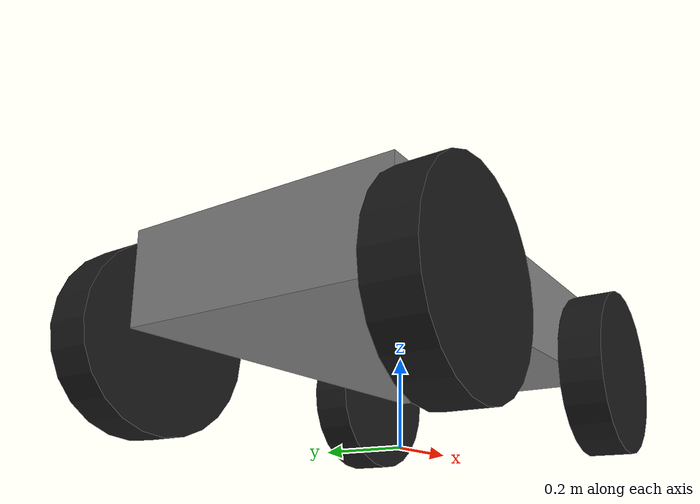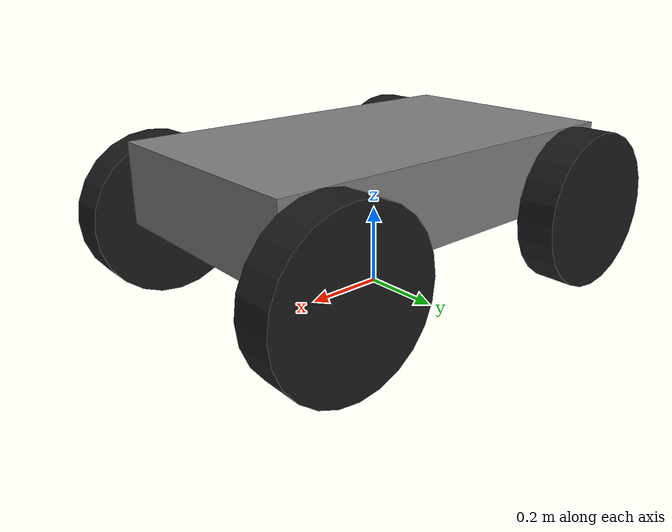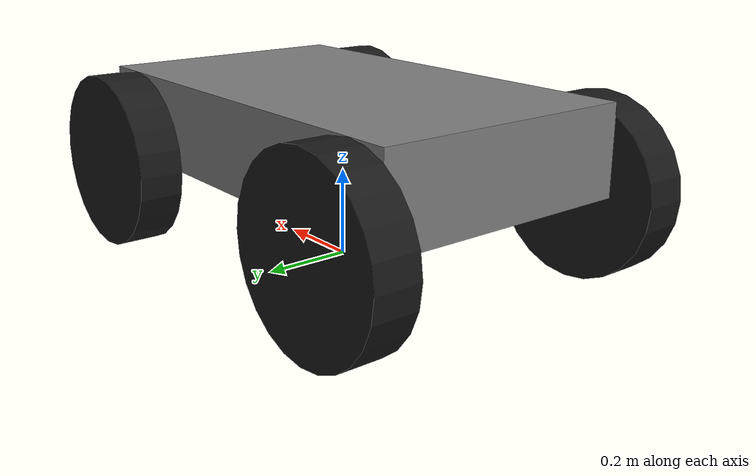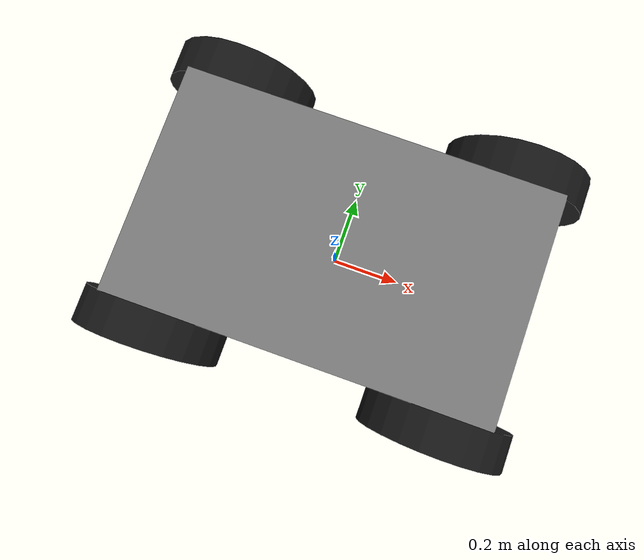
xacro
<?xml version="1.0"?>
<robot name="ugv" xmlns:xacro="http://www.ros.org/wiki/xacro">

  <!-- ================= BASE FOOTPRINT (ROOT) ================= -->
  <link name="base_footprint"/>

  <joint name="base_footprint_joint" type="fixed">
    <parent link="base_footprint"/>
    <child link="base_link"/>
    <origin xyz="0 0 0.2" rpy="0 0 0"/>
  </joint>

  <!-- ================= BASE LINK (PHYSICS ROOT) ================= -->
  <link name="base_link">
    <inertial>
      <mass value="50.0"/>
      <origin xyz="0 0 0.1"/>
      <inertia ixx="1.0" ixy="0" ixz="0" iyy="1.0" iyz="0" izz="1.0"/>
    </inertial>
    <visual>
      <origin xyz="0 0 0.1"/>
      <geometry><box size="1.0 0.6 0.2"/></geometry>
      <material name="chassis_color"><color rgba="0.5 0.5 0.5 1.0"/></material>
    </visual>
    <collision>
      <origin xyz="0 0 0.1"/>
      <geometry><box size="1.0 0.6 0.2"/></geometry>
    </collision>
  </link>

  <!-- ================= WHEEL MACRO ================= -->
  <xacro:macro name="wheel" params="name x y">
    <link name="${name}">
      <visual>
        <origin xyz="0 0 0" rpy="${pi/2} 0 0"/>
        <geometry><cylinder radius="0.2" length="0.1"/></geometry>
        <material name="wheel_color"><color rgba="0.1 0.1 0.1 1.0"/></material>
      </visual>

      <collision>
        <origin xyz="0 0 0" rpy="${pi/2} 0 0"/>
        <geometry><cylinder radius="0.2" length="0.1"/></geometry>
      </collision>

      <inertial>
        <mass value="5.0"/>
        <inertia ixx="0.1" ixy="0" ixz="0" iyy="0.1" iyz="0" izz="0.1"/>
      </inertial>
    </link>

    <joint name="${name}_joint" type="continuous">
      <parent link="base_link"/>
      <child link="${name}"/>
      <origin xyz="${x} ${y} 0"/>
      <axis xyz="0 1 0"/>
      <limit effort="1000" velocity="10.0"/>
      <dynamics damping="0.1" friction="0.1"/>
    </joint>

    <gazebo reference="${name}">
      <mu1 value="1.0"/>
      <mu2 value="1.0"/>
      <kp value="10000000.0"/>
      <kd value="1.0"/>
      <material>Gazebo/Grey</material>
    </gazebo>
  </xacro:macro>

  <!-- ================= WHEELS ================= -->
  <xacro:wheel name="front_left_wheel"  x="0.4"  y="0.35"/>
  <xacro:wheel name="front_right_wheel" x="0.4"  y="-0.35"/>
  <xacro:wheel name="rear_left_wheel"   x="-0.4" y="0.35"/>
  <xacro:wheel name="rear_right_wheel"  x="-0.4" y="-0.35"/>

  <!-- ================= SENSORS ================= -->
  <link name="lidar_link">
    <inertial>
      <mass value="0.1"/>
      <origin xyz="0 0 0"/>
      <inertia ixx="0.001" ixy="0" ixz="0" iyy="0.001" iyz="0" izz="0.001"/>
    </inertial>
  </link>
  <joint name="lidar_joint" type="fixed">
    <parent link="base_link"/>
    <child link="lidar_link"/>
    <origin xyz="0.4 0 0.2"/>
  </joint>
  <gazebo reference="lidar_link">
    <sensor name="lidar" type="ray">
      <visualize>true</visualize>
      <update_rate>10</update_rate>
      <ray>
        <scan>
          <horizontal>
            <samples>360</samples>
            <min_angle>-3.14</min_angle>
            <max_angle>3.14</max_angle>
          </horizontal>
        </scan>
        <range>
          <min>0.3</min>
          <max>12.0</max>
        </range>
      </ray>
      <plugin name="lidar_plugin" filename="libgazebo_ros_ray_sensor.so">
        <ros>
          <remapping>~/out:=scan</remapping>
        </ros>
        <output_type>sensor_msgs/LaserScan</output_type>
        <frame_name>lidar_link</frame_name>
      </plugin>
      <always_on>true</always_on>
      <update_rate>10.0</update_rate>
    </sensor>
  </gazebo>

  <link name="imu_link"/>
  <joint name="imu_joint" type="fixed">
    <parent link="base_link"/>
    <child link="imu_link"/>
    <origin xyz="0 0 0.1"/>
  </joint>
  <gazebo reference="imu_link">
    <sensor name="imu_sensor" type="imu">
      <always_on>true</always_on>
      <update_rate>30.0</update_rate>
      <plugin name="imu_plugin" filename="libgazebo_ros_imu_sensor.so">
        <ros>
          <remapping>~/out:=imu</remapping>
        </ros>
        <initial_orientation_as_reference>false</initial_orientation_as_reference>
        <frame_name>imu_link</frame_name>
      </plugin>
    </sensor>
  </gazebo>

  <!-- ================= DIRECT GAZEBO MOBILITY (PROXY) ================= -->
  <gazebo>
    <plugin name="diff_drive" filename="libgazebo_ros_diff_drive.so">
      <ros>
        <namespace>/</namespace>
        <remapping>cmd_vel:=cmd_vel</remapping>
        <remapping>odom:=odom</remapping>
      </ros>

      <num_wheel_pairs>2</num_wheel_pairs>
      <left_joint>front_left_wheel_joint</left_joint>
      <right_joint>front_right_wheel_joint</right_joint>
      <left_joint>rear_left_wheel_joint</left_joint>
      <right_joint>rear_right_wheel_joint</right_joint>

      <wheel_separation>0.7</wheel_separation>
      <wheel_diameter>0.4</wheel_diameter>

      <max_wheel_torque>200</max_wheel_torque>
      <max_wheel_acceleration>5.0</max_wheel_acceleration>

      <publish_odom>true</publish_odom>
      <publish_odom_tf>true</publish_odom_tf>
      <publish_wheel_tf>false</publish_wheel_tf>

      <odometry_frame>odom</odometry_frame>
      <robot_base_frame>base_footprint</robot_base_frame>
    </plugin>

    <plugin name="joint_state_publisher" filename="libgazebo_ros_joint_state_publisher.so">
      <ros>
        <remapping>joint_states:=joint_states</remapping>
      </ros>
      <update_rate>50</update_rate>
      <joint_name>front_left_wheel_joint</joint_name>
      <joint_name>front_right_wheel_joint</joint_name>
      <joint_name>rear_left_wheel_joint</joint_name>
      <joint_name>rear_right_wheel_joint</joint_name>
    </plugin>
  </gazebo>

</robot>
